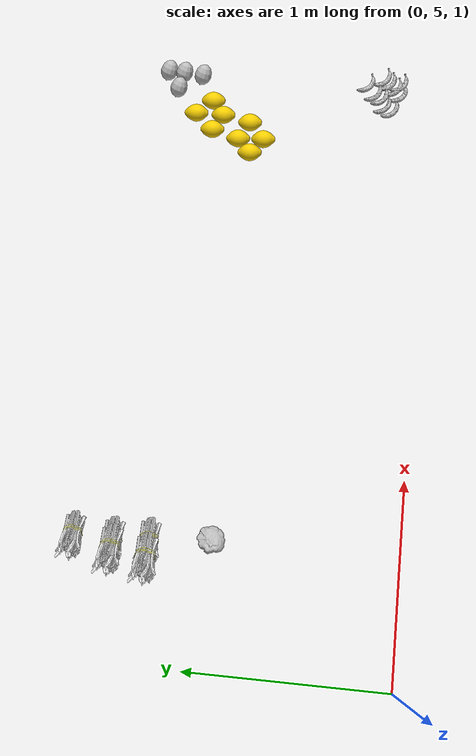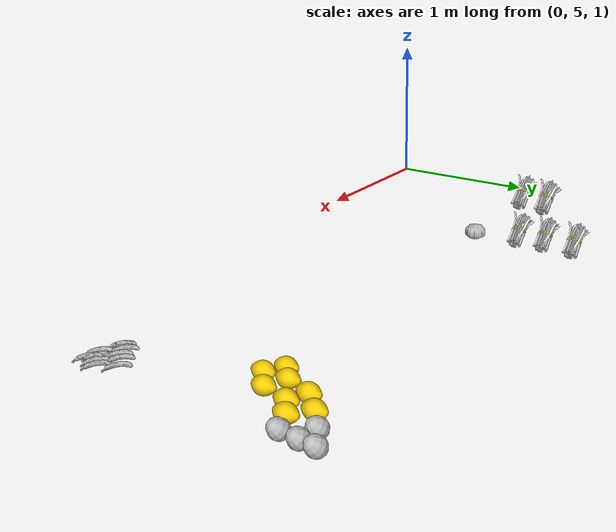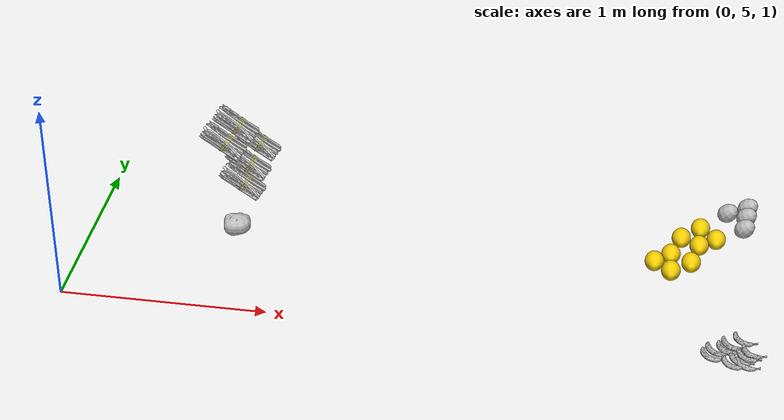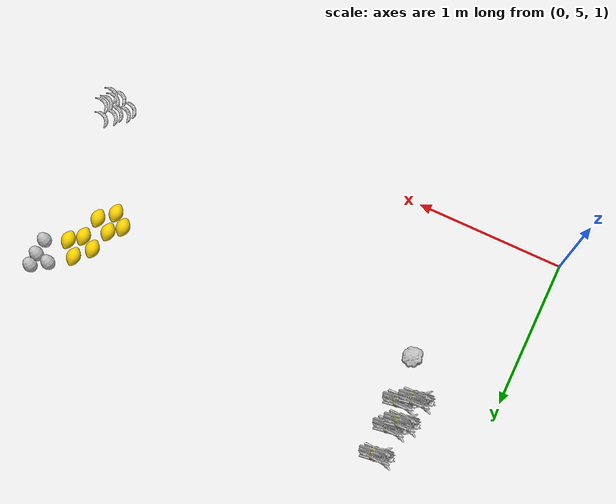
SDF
<sdf version="1.6">
 <world name="default">
  <model name="banana_clone_12">
   <link name="link_0">
    <inertial>
     <mass>1</mass>
     <inertia>
      <ixx>0.166667</ixx>
      <ixy>0</ixy>
      <ixz>0</ixz>
      <iyy>0.166667</iyy>
      <iyz>0</iyz>
      <izz>0.166667</izz>
     </inertia>
    </inertial>
    <visual name="visual">
     <geometry><mesh><uri>model://banana/meshes/banana.dae</uri><scale>1 1 1</scale></mesh></geometry>
    </visual>
    <collision name="collision">
     <geometry><mesh><uri>model://banana/meshes/banana.dae</uri><scale>1 1 1</scale></mesh></geometry>
     <surface>
      <friction>
       <ode><mu>1</mu><mu2>1</mu2><fdir1>0 0 0</fdir1><slip1>0</slip1><slip2>0</slip2></ode>
       <torsional>
        <coefficient>1</coefficient>
        <patch_radius>0</patch_radius>
        <surface_radius>0</surface_radius>
        <use_patch_radius>1</use_patch_radius>
        <ode><slip>0</slip></ode>
       </torsional>
      </friction>
      <bounce><restitution_coefficient>0</restitution_coefficient><threshold>1e+06</threshold></bounce>
      <contact>
       <collide_without_contact>0</collide_without_contact>
       <collide_without_contact_bitmask>1</collide_without_contact_bitmask>
       <collide_bitmask>1</collide_bitmask>
       <ode>
        <soft_cfm>0</soft_cfm>
        <soft_erp>0.2</soft_erp>
        <kp>1e+13</kp>
        <kd>1</kd>
        <max_vel>0.01</max_vel>
        <min_depth>0</min_depth>
       </ode>
       <bullet>
        <split_impulse>1</split_impulse>
        <split_impulse_penetration_threshold>-0.01</split_impulse_penetration_threshold>
        <soft_cfm>0</soft_cfm>
        <soft_erp>0.2</soft_erp>
        <kp>1e+13</kp>
        <kd>1</kd>
       </bullet>
      </contact>
     </surface>
    </collision>
   </link>
   <static>1</static>
   <pose>3.20722 5.31088 0.868134 0 -0 0</pose>
  </model>
  <model name="banana_clone_14">
   <link name="link_0">
    <inertial>
     <mass>1</mass>
     <inertia>
      <ixx>0.166667</ixx>
      <ixy>0</ixy>
      <ixz>0</ixz>
      <iyy>0.166667</iyy>
      <iyz>0</iyz>
      <izz>0.166667</izz>
     </inertia>
    </inertial>
    <visual name="visual">
     <geometry><mesh><uri>model://banana/meshes/banana.dae</uri><scale>1 1 1</scale></mesh></geometry>
    </visual>
    <collision name="collision">
     <geometry><mesh><uri>model://banana/meshes/banana.dae</uri><scale>1 1 1</scale></mesh></geometry>
     <surface>
      <friction>
       <ode><mu>1</mu><mu2>1</mu2><fdir1>0 0 0</fdir1><slip1>0</slip1><slip2>0</slip2></ode>
       <torsional>
        <coefficient>1</coefficient>
        <patch_radius>0</patch_radius>
        <surface_radius>0</surface_radius>
        <use_patch_radius>1</use_patch_radius>
        <ode><slip>0</slip></ode>
       </torsional>
      </friction>
      <bounce><restitution_coefficient>0</restitution_coefficient><threshold>1e+06</threshold></bounce>
      <contact>
       <collide_without_contact>0</collide_without_contact>
       <collide_without_contact_bitmask>1</collide_without_contact_bitmask>
       <collide_bitmask>1</collide_bitmask>
       <ode>
        <soft_cfm>0</soft_cfm>
        <soft_erp>0.2</soft_erp>
        <kp>1e+13</kp>
        <kd>1</kd>
        <max_vel>0.01</max_vel>
        <min_depth>0</min_depth>
       </ode>
       <bullet>
        <split_impulse>1</split_impulse>
        <split_impulse_penetration_threshold>-0.01</split_impulse_penetration_threshold>
        <soft_cfm>0</soft_cfm>
        <soft_erp>0.2</soft_erp>
        <kp>1e+13</kp>
        <kd>1</kd>
       </bullet>
      </contact>
     </surface>
    </collision>
   </link>
   <static>1</static>
   <pose>3.15384 5.26782 0.868134 0 -0 0</pose>
  </model>
  <model name="banana_clone_15">
   <link name="link_0">
    <inertial>
     <mass>1</mass>
     <inertia>
      <ixx>0.166667</ixx>
      <ixy>0</ixy>
      <ixz>0</ixz>
      <iyy>0.166667</iyy>
      <iyz>0</iyz>
      <izz>0.166667</izz>
     </inertia>
    </inertial>
    <visual name="visual">
     <geometry><mesh><uri>model://banana/meshes/banana.dae</uri><scale>1 1 1</scale></mesh></geometry>
    </visual>
    <collision name="collision">
     <geometry><mesh><uri>model://banana/meshes/banana.dae</uri><scale>1 1 1</scale></mesh></geometry>
     <surface>
      <friction>
       <ode><mu>1</mu><mu2>1</mu2><fdir1>0 0 0</fdir1><slip1>0</slip1><slip2>0</slip2></ode>
       <torsional>
        <coefficient>1</coefficient>
        <patch_radius>0</patch_radius>
        <surface_radius>0</surface_radius>
        <use_patch_radius>1</use_patch_radius>
        <ode><slip>0</slip></ode>
       </torsional>
      </friction>
      <bounce><restitution_coefficient>0</restitution_coefficient><threshold>1e+06</threshold></bounce>
      <contact>
       <collide_without_contact>0</collide_without_contact>
       <collide_without_contact_bitmask>1</collide_without_contact_bitmask>
       <collide_bitmask>1</collide_bitmask>
       <ode>
        <soft_cfm>0</soft_cfm>
        <soft_erp>0.2</soft_erp>
        <kp>1e+13</kp>
        <kd>1</kd>
        <max_vel>0.01</max_vel>
        <min_depth>0</min_depth>
       </ode>
       <bullet>
        <split_impulse>1</split_impulse>
        <split_impulse_penetration_threshold>-0.01</split_impulse_penetration_threshold>
        <soft_cfm>0</soft_cfm>
        <soft_erp>0.2</soft_erp>
        <kp>1e+13</kp>
        <kd>1</kd>
       </bullet>
      </contact>
     </surface>
    </collision>
   </link>
   <static>1</static>
   <pose>3.13296 5.22975 0.868134 0 -0 0</pose>
  </model>
  <model name="banana_clone_16">
   <link name="link_0">
    <inertial>
     <mass>1</mass>
     <inertia>
      <ixx>0.166667</ixx>
      <ixy>0</ixy>
      <ixz>0</ixz>
      <iyy>0.166667</iyy>
      <iyz>0</iyz>
      <izz>0.166667</izz>
     </inertia>
    </inertial>
    <visual name="visual">
     <geometry><mesh><uri>model://banana/meshes/banana.dae</uri><scale>1 1 1</scale></mesh></geometry>
    </visual>
    <collision name="collision">
     <geometry><mesh><uri>model://banana/meshes/banana.dae</uri><scale>1 1 1</scale></mesh></geometry>
     <surface>
      <friction>
       <ode><mu>1</mu><mu2>1</mu2><fdir1>0 0 0</fdir1><slip1>0</slip1><slip2>0</slip2></ode>
       <torsional>
        <coefficient>1</coefficient>
        <patch_radius>0</patch_radius>
        <surface_radius>0</surface_radius>
        <use_patch_radius>1</use_patch_radius>
        <ode><slip>0</slip></ode>
       </torsional>
      </friction>
      <bounce><restitution_coefficient>0</restitution_coefficient><threshold>1e+06</threshold></bounce>
      <contact>
       <collide_without_contact>0</collide_without_contact>
       <collide_without_contact_bitmask>1</collide_without_contact_bitmask>
       <collide_bitmask>1</collide_bitmask>
       <ode>
        <soft_cfm>0</soft_cfm>
        <soft_erp>0.2</soft_erp>
        <kp>1e+13</kp>
        <kd>1</kd>
        <max_vel>0.01</max_vel>
        <min_depth>0</min_depth>
       </ode>
       <bullet>
        <split_impulse>1</split_impulse>
        <split_impulse_penetration_threshold>-0.01</split_impulse_penetration_threshold>
        <soft_cfm>0</soft_cfm>
        <soft_erp>0.2</soft_erp>
        <kp>1e+13</kp>
        <kd>1</kd>
       </bullet>
      </contact>
     </surface>
    </collision>
   </link>
   <static>1</static>
   <pose>3.08263 5.21174 0.868134 0 -0 0</pose>
  </model>
  <model name="banana_clone_17">
   <link name="link_0">
    <inertial>
     <mass>1</mass>
     <inertia>
      <ixx>0.166667</ixx>
      <ixy>0</ixy>
      <ixz>0</ixz>
      <iyy>0.166667</iyy>
      <iyz>0</iyz>
      <izz>0.166667</izz>
     </inertia>
    </inertial>
    <visual name="visual">
     <geometry><mesh><uri>model://banana/meshes/banana.dae</uri><scale>1 1 1</scale></mesh></geometry>
    </visual>
    <collision name="collision">
     <geometry><mesh><uri>model://banana/meshes/banana.dae</uri><scale>1 1 1</scale></mesh></geometry>
     <surface>
      <friction>
       <ode><mu>1</mu><mu2>1</mu2><fdir1>0 0 0</fdir1><slip1>0</slip1><slip2>0</slip2></ode>
       <torsional>
        <coefficient>1</coefficient>
        <patch_radius>0</patch_radius>
        <surface_radius>0</surface_radius>
        <use_patch_radius>1</use_patch_radius>
        <ode><slip>0</slip></ode>
       </torsional>
      </friction>
      <bounce><restitution_coefficient>0</restitution_coefficient><threshold>1e+06</threshold></bounce>
      <contact>
       <collide_without_contact>0</collide_without_contact>
       <collide_without_contact_bitmask>1</collide_without_contact_bitmask>
       <collide_bitmask>1</collide_bitmask>
       <ode>
        <soft_cfm>0</soft_cfm>
        <soft_erp>0.2</soft_erp>
        <kp>1e+13</kp>
        <kd>1</kd>
        <max_vel>0.01</max_vel>
        <min_depth>0</min_depth>
       </ode>
       <bullet>
        <split_impulse>1</split_impulse>
        <split_impulse_penetration_threshold>-0.01</split_impulse_penetration_threshold>
        <soft_cfm>0</soft_cfm>
        <soft_erp>0.2</soft_erp>
        <kp>1e+13</kp>
        <kd>1</kd>
       </bullet>
      </contact>
     </surface>
    </collision>
   </link>
   <static>1</static>
   <pose>3.06204 5.16814 0.868134 0 -0 0</pose>
  </model>
  <model name="banana_clone_18">
   <link name="link_0">
    <inertial>
     <mass>1</mass>
     <inertia>
      <ixx>0.166667</ixx>
      <ixy>0</ixy>
      <ixz>0</ixz>
      <iyy>0.166667</iyy>
      <iyz>0</iyz>
      <izz>0.166667</izz>
     </inertia>
    </inertial>
    <visual name="visual">
     <geometry><mesh><uri>model://banana/meshes/banana.dae</uri><scale>1 1 1</scale></mesh></geometry>
    </visual>
    <collision name="collision">
     <geometry><mesh><uri>model://banana/meshes/banana.dae</uri><scale>1 1 1</scale></mesh></geometry>
     <surface>
      <friction>
       <ode><mu>1</mu><mu2>1</mu2><fdir1>0 0 0</fdir1><slip1>0</slip1><slip2>0</slip2></ode>
       <torsional>
        <coefficient>1</coefficient>
        <patch_radius>0</patch_radius>
        <surface_radius>0</surface_radius>
        <use_patch_radius>1</use_patch_radius>
        <ode><slip>0</slip></ode>
       </torsional>
      </friction>
      <bounce><restitution_coefficient>0</restitution_coefficient><threshold>1e+06</threshold></bounce>
      <contact>
       <collide_without_contact>0</collide_without_contact>
       <collide_without_contact_bitmask>1</collide_without_contact_bitmask>
       <collide_bitmask>1</collide_bitmask>
       <ode>
        <soft_cfm>0</soft_cfm>
        <soft_erp>0.2</soft_erp>
        <kp>1e+13</kp>
        <kd>1</kd>
        <max_vel>0.01</max_vel>
        <min_depth>0</min_depth>
       </ode>
       <bullet>
        <split_impulse>1</split_impulse>
        <split_impulse_penetration_threshold>-0.01</split_impulse_penetration_threshold>
        <soft_cfm>0</soft_cfm>
        <soft_erp>0.2</soft_erp>
        <kp>1e+13</kp>
        <kd>1</kd>
       </bullet>
      </contact>
     </surface>
    </collision>
   </link>
   <static>1</static>
   <pose>3.22499 5.12557 0.868134 0 -0 0</pose>
  </model>
  <model name="banana_clone_23">
   <link name="link_0">
    <inertial>
     <mass>1</mass>
     <inertia>
      <ixx>0.166667</ixx>
      <ixy>0</ixy>
      <ixz>0</ixz>
      <iyy>0.166667</iyy>
      <iyz>0</iyz>
      <izz>0.166667</izz>
     </inertia>
    </inertial>
    <visual name="visual">
     <geometry><mesh><uri>model://banana/meshes/banana.dae</uri><scale>1 1 1</scale></mesh></geometry>
    </visual>
    <collision name="collision">
     <geometry><mesh><uri>model://banana/meshes/banana.dae</uri><scale>1 1 1</scale></mesh></geometry>
     <surface>
      <friction>
       <ode><mu>1</mu><mu2>1</mu2><fdir1>0 0 0</fdir1><slip1>0</slip1><slip2>0</slip2></ode>
       <torsional>
        <coefficient>1</coefficient>
        <patch_radius>0</patch_radius>
        <surface_radius>0</surface_radius>
        <use_patch_radius>1</use_patch_radius>
        <ode><slip>0</slip></ode>
       </torsional>
      </friction>
      <bounce><restitution_coefficient>0</restitution_coefficient><threshold>1e+06</threshold></bounce>
      <contact>
       <collide_without_contact>0</collide_without_contact>
       <collide_without_contact_bitmask>1</collide_without_contact_bitmask>
       <collide_bitmask>1</collide_bitmask>
       <ode>
        <soft_cfm>0</soft_cfm>
        <soft_erp>0.2</soft_erp>
        <kp>1e+13</kp>
        <kd>1</kd>
        <max_vel>0.01</max_vel>
        <min_depth>0</min_depth>
       </ode>
       <bullet>
        <split_impulse>1</split_impulse>
        <split_impulse_penetration_threshold>-0.01</split_impulse_penetration_threshold>
        <soft_cfm>0</soft_cfm>
        <soft_erp>0.2</soft_erp>
        <kp>1e+13</kp>
        <kd>1</kd>
       </bullet>
      </contact>
     </surface>
    </collision>
   </link>
   <static>1</static>
   <pose>3.1606 5.12515 0.868134 0 -0 0</pose>
  </model>
  <model name="banana_clone_24">
   <link name="link_0">
    <inertial>
     <mass>1</mass>
     <inertia>
      <ixx>0.166667</ixx>
      <ixy>0</ixy>
      <ixz>0</ixz>
      <iyy>0.166667</iyy>
      <iyz>0</iyz>
      <izz>0.166667</izz>
     </inertia>
    </inertial>
    <visual name="visual">
     <geometry><mesh><uri>model://banana/meshes/banana.dae</uri><scale>1 1 1</scale></mesh></geometry>
    </visual>
    <collision name="collision">
     <geometry><mesh><uri>model://banana/meshes/banana.dae</uri><scale>1 1 1</scale></mesh></geometry>
     <surface>
      <friction>
       <ode><mu>1</mu><mu2>1</mu2><fdir1>0 0 0</fdir1><slip1>0</slip1><slip2>0</slip2></ode>
       <torsional>
        <coefficient>1</coefficient>
        <patch_radius>0</patch_radius>
        <surface_radius>0</surface_radius>
        <use_patch_radius>1</use_patch_radius>
        <ode><slip>0</slip></ode>
       </torsional>
      </friction>
      <bounce><restitution_coefficient>0</restitution_coefficient><threshold>1e+06</threshold></bounce>
      <contact>
       <collide_without_contact>0</collide_without_contact>
       <collide_without_contact_bitmask>1</collide_without_contact_bitmask>
       <collide_bitmask>1</collide_bitmask>
       <ode>
        <soft_cfm>0</soft_cfm>
        <soft_erp>0.2</soft_erp>
        <kp>1e+13</kp>
        <kd>1</kd>
        <max_vel>0.01</max_vel>
        <min_depth>0</min_depth>
       </ode>
       <bullet>
        <split_impulse>1</split_impulse>
        <split_impulse_penetration_threshold>-0.01</split_impulse_penetration_threshold>
        <soft_cfm>0</soft_cfm>
        <soft_erp>0.2</soft_erp>
        <kp>1e+13</kp>
        <kd>1</kd>
       </bullet>
      </contact>
     </surface>
    </collision>
   </link>
   <static>1</static>
   <pose>3.19606 5.15544 0.868134 0 -0 0</pose>
  </model>
  <model name="banana_clone_25">
   <link name="link_0">
    <inertial>
     <mass>1</mass>
     <inertia>
      <ixx>0.166667</ixx>
      <ixy>0</ixy>
      <ixz>0</ixz>
      <iyy>0.166667</iyy>
      <iyz>0</iyz>
      <izz>0.166667</izz>
     </inertia>
    </inertial>
    <visual name="visual">
     <geometry><mesh><uri>model://banana/meshes/banana.dae</uri><scale>1 1 1</scale></mesh></geometry>
    </visual>
    <collision name="collision">
     <geometry><mesh><uri>model://banana/meshes/banana.dae</uri><scale>1 1 1</scale></mesh></geometry>
     <surface>
      <friction>
       <ode><mu>1</mu><mu2>1</mu2><fdir1>0 0 0</fdir1><slip1>0</slip1><slip2>0</slip2></ode>
       <torsional>
        <coefficient>1</coefficient>
        <patch_radius>0</patch_radius>
        <surface_radius>0</surface_radius>
        <use_patch_radius>1</use_patch_radius>
        <ode><slip>0</slip></ode>
       </torsional>
      </friction>
      <bounce><restitution_coefficient>0</restitution_coefficient><threshold>1e+06</threshold></bounce>
      <contact>
       <collide_without_contact>0</collide_without_contact>
       <collide_without_contact_bitmask>1</collide_without_contact_bitmask>
       <collide_bitmask>1</collide_bitmask>
       <ode>
        <soft_cfm>0</soft_cfm>
        <soft_erp>0.2</soft_erp>
        <kp>1e+13</kp>
        <kd>1</kd>
        <max_vel>0.01</max_vel>
        <min_depth>0</min_depth>
       </ode>
       <bullet>
        <split_impulse>1</split_impulse>
        <split_impulse_penetration_threshold>-0.01</split_impulse_penetration_threshold>
        <soft_cfm>0</soft_cfm>
        <soft_erp>0.2</soft_erp>
        <kp>1e+13</kp>
        <kd>1</kd>
       </bullet>
      </contact>
     </surface>
    </collision>
   </link>
   <static>1</static>
   <pose>3.22813 5.19032 0.868134 0 -0 0</pose>
  </model>
  <model name="banana_clone_26">
   <link name="link_0">
    <inertial>
     <mass>1</mass>
     <inertia>
      <ixx>0.166667</ixx>
      <ixy>0</ixy>
      <ixz>0</ixz>
      <iyy>0.166667</iyy>
      <iyz>0</iyz>
      <izz>0.166667</izz>
     </inertia>
    </inertial>
    <visual name="visual">
     <geometry><mesh><uri>model://banana/meshes/banana.dae</uri><scale>1 1 1</scale></mesh></geometry>
    </visual>
    <collision name="collision">
     <geometry><mesh><uri>model://banana/meshes/banana.dae</uri><scale>1 1 1</scale></mesh></geometry>
     <surface>
      <friction>
       <ode><mu>1</mu><mu2>1</mu2><fdir1>0 0 0</fdir1><slip1>0</slip1><slip2>0</slip2></ode>
       <torsional>
        <coefficient>1</coefficient>
        <patch_radius>0</patch_radius>
        <surface_radius>0</surface_radius>
        <use_patch_radius>1</use_patch_radius>
        <ode><slip>0</slip></ode>
       </torsional>
      </friction>
      <bounce><restitution_coefficient>0</restitution_coefficient><threshold>1e+06</threshold></bounce>
      <contact>
       <collide_without_contact>0</collide_without_contact>
       <collide_without_contact_bitmask>1</collide_without_contact_bitmask>
       <collide_bitmask>1</collide_bitmask>
       <ode>
        <soft_cfm>0</soft_cfm>
        <soft_erp>0.2</soft_erp>
        <kp>1e+13</kp>
        <kd>1</kd>
        <max_vel>0.01</max_vel>
        <min_depth>0</min_depth>
       </ode>
       <bullet>
        <split_impulse>1</split_impulse>
        <split_impulse_penetration_threshold>-0.01</split_impulse_penetration_threshold>
        <soft_cfm>0</soft_cfm>
        <soft_erp>0.2</soft_erp>
        <kp>1e+13</kp>
        <kd>1</kd>
       </bullet>
      </contact>
     </surface>
    </collision>
   </link>
   <static>1</static>
   <pose>3.25047 5.22007 0.868134 0 -0 0</pose>
  </model>
  <model name="lime_clone_7">
   <link name="link_0">
    <inertial>
     <mass>1</mass>
     <inertia>
      <ixx>0.166667</ixx>
      <ixy>0</ixy>
      <ixz>0</ixz>
      <iyy>0.166667</iyy>
      <iyz>0</iyz>
      <izz>0.166667</izz>
     </inertia>
    </inertial>
    <visual name="visual">
     <geometry><mesh><uri>model://lime/meshes/lime.dae</uri><scale>1 1 1</scale></mesh></geometry>
    </visual>
    <collision name="collision">
     <geometry><mesh><uri>model://lime/meshes/lime.dae</uri><scale>1 1 1</scale></mesh></geometry>
     <surface>
      <friction>
       <ode><mu>1</mu><mu2>1</mu2><fdir1>0 0 0</fdir1><slip1>0</slip1><slip2>0</slip2></ode>
       <torsional>
        <coefficient>1</coefficient>
        <patch_radius>0</patch_radius>
        <surface_radius>0</surface_radius>
        <use_patch_radius>1</use_patch_radius>
        <ode><slip>0</slip></ode>
       </torsional>
      </friction>
      <bounce><restitution_coefficient>0</restitution_coefficient><threshold>1e+06</threshold></bounce>
      <contact>
       <collide_without_contact>0</collide_without_contact>
       <collide_without_contact_bitmask>1</collide_without_contact_bitmask>
       <collide_bitmask>1</collide_bitmask>
       <ode>
        <soft_cfm>0</soft_cfm>
        <soft_erp>0.2</soft_erp>
        <kp>1e+13</kp>
        <kd>1</kd>
        <max_vel>0.01</max_vel>
        <min_depth>0</min_depth>
       </ode>
       <bullet>
        <split_impulse>1</split_impulse>
        <split_impulse_penetration_threshold>-0.01</split_impulse_penetration_threshold>
        <soft_cfm>0</soft_cfm>
        <soft_erp>0.2</soft_erp>
        <kp>1e+13</kp>
        <kd>1</kd>
       </bullet>
      </contact>
     </surface>
    </collision>
   </link>
   <static>1</static>
   <pose>3.17719 6.32028 0.896084 0 -0 0</pose>
  </model>
  <model name="lime_clone_8">
   <link name="link_0">
    <inertial>
     <mass>1</mass>
     <inertia>
      <ixx>0.166667</ixx>
      <ixy>0</ixy>
      <ixz>0</ixz>
      <iyy>0.166667</iyy>
      <iyz>0</iyz>
      <izz>0.166667</izz>
     </inertia>
    </inertial>
    <visual name="visual">
     <geometry><mesh><uri>model://lime/meshes/lime.dae</uri><scale>1 1 1</scale></mesh></geometry>
    </visual>
    <collision name="collision">
     <geometry><mesh><uri>model://lime/meshes/lime.dae</uri><scale>1 1 1</scale></mesh></geometry>
     <surface>
      <friction>
       <ode><mu>1</mu><mu2>1</mu2><fdir1>0 0 0</fdir1><slip1>0</slip1><slip2>0</slip2></ode>
       <torsional>
        <coefficient>1</coefficient>
        <patch_radius>0</patch_radius>
        <surface_radius>0</surface_radius>
        <use_patch_radius>1</use_patch_radius>
        <ode><slip>0</slip></ode>
       </torsional>
      </friction>
      <bounce><restitution_coefficient>0</restitution_coefficient><threshold>1e+06</threshold></bounce>
      <contact>
       <collide_without_contact>0</collide_without_contact>
       <collide_without_contact_bitmask>1</collide_without_contact_bitmask>
       <collide_bitmask>1</collide_bitmask>
       <ode>
        <soft_cfm>0</soft_cfm>
        <soft_erp>0.2</soft_erp>
        <kp>1e+13</kp>
        <kd>1</kd>
        <max_vel>0.01</max_vel>
        <min_depth>0</min_depth>
       </ode>
       <bullet>
        <split_impulse>1</split_impulse>
        <split_impulse_penetration_threshold>-0.01</split_impulse_penetration_threshold>
        <soft_cfm>0</soft_cfm>
        <soft_erp>0.2</soft_erp>
        <kp>1e+13</kp>
        <kd>1</kd>
       </bullet>
      </contact>
     </surface>
    </collision>
   </link>
   <static>1</static>
   <pose>3.18022 6.40688 0.896084 0 -0 0</pose>
  </model>
  <model name="lime_clone_9">
   <link name="link_0">
    <inertial>
     <mass>1</mass>
     <inertia>
      <ixx>0.166667</ixx>
      <ixy>0</ixy>
      <ixz>0</ixz>
      <iyy>0.166667</iyy>
      <iyz>0</iyz>
      <izz>0.166667</izz>
     </inertia>
    </inertial>
    <visual name="visual">
     <geometry><mesh><uri>model://lime/meshes/lime.dae</uri><scale>1 1 1</scale></mesh></geometry>
    </visual>
    <collision name="collision">
     <geometry><mesh><uri>model://lime/meshes/lime.dae</uri><scale>1 1 1</scale></mesh></geometry>
     <surface>
      <friction>
       <ode><mu>1</mu><mu2>1</mu2><fdir1>0 0 0</fdir1><slip1>0</slip1><slip2>0</slip2></ode>
       <torsional>
        <coefficient>1</coefficient>
        <patch_radius>0</patch_radius>
        <surface_radius>0</surface_radius>
        <use_patch_radius>1</use_patch_radius>
        <ode><slip>0</slip></ode>
       </torsional>
      </friction>
      <bounce><restitution_coefficient>0</restitution_coefficient><threshold>1e+06</threshold></bounce>
      <contact>
       <collide_without_contact>0</collide_without_contact>
       <collide_without_contact_bitmask>1</collide_without_contact_bitmask>
       <collide_bitmask>1</collide_bitmask>
       <ode>
        <soft_cfm>0</soft_cfm>
        <soft_erp>0.2</soft_erp>
        <kp>1e+13</kp>
        <kd>1</kd>
        <max_vel>0.01</max_vel>
        <min_depth>0</min_depth>
       </ode>
       <bullet>
        <split_impulse>1</split_impulse>
        <split_impulse_penetration_threshold>-0.01</split_impulse_penetration_threshold>
        <soft_cfm>0</soft_cfm>
        <soft_erp>0.2</soft_erp>
        <kp>1e+13</kp>
        <kd>1</kd>
       </bullet>
      </contact>
     </surface>
    </collision>
   </link>
   <static>1</static>
   <pose>3.17129 6.21427 0.896084 0 -0 0</pose>
  </model>
  <model name="lime_clone_10">
   <link name="link_0">
    <inertial>
     <mass>1</mass>
     <inertia>
      <ixx>0.166667</ixx>
      <ixy>0</ixy>
      <ixz>0</ixz>
      <iyy>0.166667</iyy>
      <iyz>0</iyz>
      <izz>0.166667</izz>
     </inertia>
    </inertial>
    <visual name="visual">
     <geometry><mesh><uri>model://lime/meshes/lime.dae</uri><scale>1 1 1</scale></mesh></geometry>
    </visual>
    <collision name="collision">
     <geometry><mesh><uri>model://lime/meshes/lime.dae</uri><scale>1 1 1</scale></mesh></geometry>
     <surface>
      <friction>
       <ode><mu>1</mu><mu2>1</mu2><fdir1>0 0 0</fdir1><slip1>0</slip1><slip2>0</slip2></ode>
       <torsional>
        <coefficient>1</coefficient>
        <patch_radius>0</patch_radius>
        <surface_radius>0</surface_radius>
        <use_patch_radius>1</use_patch_radius>
        <ode><slip>0</slip></ode>
       </torsional>
      </friction>
      <bounce><restitution_coefficient>0</restitution_coefficient><threshold>1e+06</threshold></bounce>
      <contact>
       <collide_without_contact>0</collide_without_contact>
       <collide_without_contact_bitmask>1</collide_without_contact_bitmask>
       <collide_bitmask>1</collide_bitmask>
       <ode>
        <soft_cfm>0</soft_cfm>
        <soft_erp>0.2</soft_erp>
        <kp>1e+13</kp>
        <kd>1</kd>
        <max_vel>0.01</max_vel>
        <min_depth>0</min_depth>
       </ode>
       <bullet>
        <split_impulse>1</split_impulse>
        <split_impulse_penetration_threshold>-0.01</split_impulse_penetration_threshold>
        <soft_cfm>0</soft_cfm>
        <soft_erp>0.2</soft_erp>
        <kp>1e+13</kp>
        <kd>1</kd>
       </bullet>
      </contact>
     </surface>
    </collision>
   </link>
   <static>1</static>
   <pose>3.08065 6.34166 0.896084 0 -0 0</pose>
  </model>
  <model name="lemon">
   <link name="link_0">
    <inertial>
     <mass>1</mass>
     <inertia>
      <ixx>0.166667</ixx>
      <ixy>0</ixy>
      <ixz>0</ixz>
      <iyy>0.166667</iyy>
      <iyz>0</iyz>
      <izz>0.166667</izz>
     </inertia>
    </inertial>
    <visual name="visual">
     <geometry><mesh><uri>model://lemon/meshes/lemon.dae</uri><scale>0.2 0.2 0.2</scale></mesh></geometry>
    </visual>
    <collision name="collision">
     <geometry><mesh><uri>model://lemon/meshes/lemon.dae</uri><scale>0.2 0.2 0.2</scale></mesh></geometry>
     <surface>
      <friction>
       <ode><mu>1</mu><mu2>1</mu2><fdir1>0 0 0</fdir1><slip1>0</slip1><slip2>0</slip2></ode>
       <torsional>
        <coefficient>1</coefficient>
        <patch_radius>0</patch_radius>
        <surface_radius>0</surface_radius>
        <use_patch_radius>1</use_patch_radius>
        <ode><slip>0</slip></ode>
       </torsional>
      </friction>
      <bounce><restitution_coefficient>0</restitution_coefficient><threshold>1e+06</threshold></bounce>
      <contact>
       <collide_without_contact>0</collide_without_contact>
       <collide_without_contact_bitmask>1</collide_without_contact_bitmask>
       <collide_bitmask>1</collide_bitmask>
       <ode>
        <soft_cfm>0</soft_cfm>
        <soft_erp>0.2</soft_erp>
        <kp>1e+13</kp>
        <kd>1</kd>
        <max_vel>0.01</max_vel>
        <min_depth>0</min_depth>
       </ode>
       <bullet>
        <split_impulse>1</split_impulse>
        <split_impulse_penetration_threshold>-0.01</split_impulse_penetration_threshold>
        <soft_cfm>0</soft_cfm>
        <soft_erp>0.2</soft_erp>
        <kp>1e+13</kp>
        <kd>1</kd>
       </bullet>
      </contact>
     </surface>
    </collision>
   </link>
   <static>1</static>
   <pose>3.04604 6.24248 0.834655 0 -0 0</pose>
  </model>
  <model name="lemon_clone">
   <link name="link_0">
    <inertial>
     <mass>1</mass>
     <inertia>
      <ixx>0.166667</ixx>
      <ixy>0</ixy>
      <ixz>0</ixz>
      <iyy>0.166667</iyy>
      <iyz>0</iyz>
      <izz>0.166667</izz>
     </inertia>
    </inertial>
    <visual name="visual">
     <geometry><mesh><uri>model://lemon/meshes/lemon.dae</uri><scale>0.2 0.2 0.2</scale></mesh></geometry>
    </visual>
    <collision name="collision">
     <geometry><mesh><uri>model://lemon/meshes/lemon.dae</uri><scale>0.2 0.2 0.2</scale></mesh></geometry>
     <surface>
      <friction>
       <ode><mu>1</mu><mu2>1</mu2><fdir1>0 0 0</fdir1><slip1>0</slip1><slip2>0</slip2></ode>
       <torsional>
        <coefficient>1</coefficient>
        <patch_radius>0</patch_radius>
        <surface_radius>0</surface_radius>
        <use_patch_radius>1</use_patch_radius>
        <ode><slip>0</slip></ode>
       </torsional>
      </friction>
      <bounce><restitution_coefficient>0</restitution_coefficient><threshold>1e+06</threshold></bounce>
      <contact>
       <collide_without_contact>0</collide_without_contact>
       <collide_without_contact_bitmask>1</collide_without_contact_bitmask>
       <collide_bitmask>1</collide_bitmask>
       <ode>
        <soft_cfm>0</soft_cfm>
        <soft_erp>0.2</soft_erp>
        <kp>1e+13</kp>
        <kd>1</kd>
        <max_vel>0.01</max_vel>
        <min_depth>0</min_depth>
       </ode>
       <bullet>
        <split_impulse>1</split_impulse>
        <split_impulse_penetration_threshold>-0.01</split_impulse_penetration_threshold>
        <soft_cfm>0</soft_cfm>
        <soft_erp>0.2</soft_erp>
        <kp>1e+13</kp>
        <kd>1</kd>
       </bullet>
      </contact>
     </surface>
    </collision>
   </link>
   <static>1</static>
   <pose>2.96402 6.17826 0.834655 0 -0 0</pose>
  </model>
  <model name="lemon_clone_0">
   <link name="link_0">
    <inertial>
     <mass>1</mass>
     <inertia>
      <ixx>0.166667</ixx>
      <ixy>0</ixy>
      <ixz>0</ixz>
      <iyy>0.166667</iyy>
      <iyz>0</iyz>
      <izz>0.166667</izz>
     </inertia>
    </inertial>
    <visual name="visual">
     <geometry><mesh><uri>model://lemon/meshes/lemon.dae</uri><scale>0.2 0.2 0.2</scale></mesh></geometry>
    </visual>
    <collision name="collision">
     <geometry><mesh><uri>model://lemon/meshes/lemon.dae</uri><scale>0.2 0.2 0.2</scale></mesh></geometry>
     <surface>
      <friction>
       <ode><mu>1</mu><mu2>1</mu2><fdir1>0 0 0</fdir1><slip1>0</slip1><slip2>0</slip2></ode>
       <torsional>
        <coefficient>1</coefficient>
        <patch_radius>0</patch_radius>
        <surface_radius>0</surface_radius>
        <use_patch_radius>1</use_patch_radius>
        <ode><slip>0</slip></ode>
       </torsional>
      </friction>
      <bounce><restitution_coefficient>0</restitution_coefficient><threshold>1e+06</threshold></bounce>
      <contact>
       <collide_without_contact>0</collide_without_contact>
       <collide_without_contact_bitmask>1</collide_without_contact_bitmask>
       <collide_bitmask>1</collide_bitmask>
       <ode>
        <soft_cfm>0</soft_cfm>
        <soft_erp>0.2</soft_erp>
        <kp>1e+13</kp>
        <kd>1</kd>
        <max_vel>0.01</max_vel>
        <min_depth>0</min_depth>
       </ode>
       <bullet>
        <split_impulse>1</split_impulse>
        <split_impulse_penetration_threshold>-0.01</split_impulse_penetration_threshold>
        <soft_cfm>0</soft_cfm>
        <soft_erp>0.2</soft_erp>
        <kp>1e+13</kp>
        <kd>1</kd>
       </bullet>
      </contact>
     </surface>
    </collision>
   </link>
   <static>1</static>
   <pose>2.96214 6.33064 0.834655 0 -0 0</pose>
  </model>
  <model name="lemon_clone_1">
   <link name="link_0">
    <inertial>
     <mass>1</mass>
     <inertia>
      <ixx>0.166667</ixx>
      <ixy>0</ixy>
      <ixz>0</ixz>
      <iyy>0.166667</iyy>
      <iyz>0</iyz>
      <izz>0.166667</izz>
     </inertia>
    </inertial>
    <visual name="visual">
     <geometry><mesh><uri>model://lemon/meshes/lemon.dae</uri><scale>0.2 0.2 0.2</scale></mesh></geometry>
    </visual>
    <collision name="collision">
     <geometry><mesh><uri>model://lemon/meshes/lemon.dae</uri><scale>0.2 0.2 0.2</scale></mesh></geometry>
     <surface>
      <friction>
       <ode><mu>1</mu><mu2>1</mu2><fdir1>0 0 0</fdir1><slip1>0</slip1><slip2>0</slip2></ode>
       <torsional>
        <coefficient>1</coefficient>
        <patch_radius>0</patch_radius>
        <surface_radius>0</surface_radius>
        <use_patch_radius>1</use_patch_radius>
        <ode><slip>0</slip></ode>
       </torsional>
      </friction>
      <bounce><restitution_coefficient>0</restitution_coefficient><threshold>1e+06</threshold></bounce>
      <contact>
       <collide_without_contact>0</collide_without_contact>
       <collide_without_contact_bitmask>1</collide_without_contact_bitmask>
       <collide_bitmask>1</collide_bitmask>
       <ode>
        <soft_cfm>0</soft_cfm>
        <soft_erp>0.2</soft_erp>
        <kp>1e+13</kp>
        <kd>1</kd>
        <max_vel>0.01</max_vel>
        <min_depth>0</min_depth>
       </ode>
       <bullet>
        <split_impulse>1</split_impulse>
        <split_impulse_penetration_threshold>-0.01</split_impulse_penetration_threshold>
        <soft_cfm>0</soft_cfm>
        <soft_erp>0.2</soft_erp>
        <kp>1e+13</kp>
        <kd>1</kd>
       </bullet>
      </contact>
     </surface>
    </collision>
   </link>
   <static>1</static>
   <pose>2.87103 6.23112 0.834655 0 -0 0</pose>
  </model>
  <model name="lemon_clone_2">
   <link name="link_0">
    <inertial>
     <mass>1</mass>
     <inertia>
      <ixx>0.166667</ixx>
      <ixy>0</ixy>
      <ixz>0</ixz>
      <iyy>0.166667</iyy>
      <iyz>0</iyz>
      <izz>0.166667</izz>
     </inertia>
    </inertial>
    <visual name="visual">
     <geometry><mesh><uri>model://lemon/meshes/lemon.dae</uri><scale>0.2 0.2 0.2</scale></mesh></geometry>
    </visual>
    <collision name="collision">
     <geometry><mesh><uri>model://lemon/meshes/lemon.dae</uri><scale>0.2 0.2 0.2</scale></mesh></geometry>
     <surface>
      <friction>
       <ode><mu>1</mu><mu2>1</mu2><fdir1>0 0 0</fdir1><slip1>0</slip1><slip2>0</slip2></ode>
       <torsional>
        <coefficient>1</coefficient>
        <patch_radius>0</patch_radius>
        <surface_radius>0</surface_radius>
        <use_patch_radius>1</use_patch_radius>
        <ode><slip>0</slip></ode>
       </torsional>
      </friction>
      <bounce><restitution_coefficient>0</restitution_coefficient><threshold>1e+06</threshold></bounce>
      <contact>
       <collide_without_contact>0</collide_without_contact>
       <collide_without_contact_bitmask>1</collide_without_contact_bitmask>
       <collide_bitmask>1</collide_bitmask>
       <ode>
        <soft_cfm>0</soft_cfm>
        <soft_erp>0.2</soft_erp>
        <kp>1e+13</kp>
        <kd>1</kd>
        <max_vel>0.01</max_vel>
        <min_depth>0</min_depth>
       </ode>
       <bullet>
        <split_impulse>1</split_impulse>
        <split_impulse_penetration_threshold>-0.01</split_impulse_penetration_threshold>
        <soft_cfm>0</soft_cfm>
        <soft_erp>0.2</soft_erp>
        <kp>1e+13</kp>
        <kd>1</kd>
       </bullet>
      </contact>
     </surface>
    </collision>
   </link>
   <static>1</static>
   <pose>2.93254 6.02452 0.834655 0 -0 0</pose>
  </model>
  <model name="lemon_clone_3">
   <link name="link_0">
    <inertial>
     <mass>1</mass>
     <inertia>
      <ixx>0.166667</ixx>
      <ixy>0</ixy>
      <ixz>0</ixz>
      <iyy>0.166667</iyy>
      <iyz>0</iyz>
      <izz>0.166667</izz>
     </inertia>
    </inertial>
    <visual name="visual">
     <geometry><mesh><uri>model://lemon/meshes/lemon.dae</uri><scale>0.2 0.2 0.2</scale></mesh></geometry>
    </visual>
    <collision name="collision">
     <geometry><mesh><uri>model://lemon/meshes/lemon.dae</uri><scale>0.2 0.2 0.2</scale></mesh></geometry>
     <surface>
      <friction>
       <ode><mu>1</mu><mu2>1</mu2><fdir1>0 0 0</fdir1><slip1>0</slip1><slip2>0</slip2></ode>
       <torsional>
        <coefficient>1</coefficient>
        <patch_radius>0</patch_radius>
        <surface_radius>0</surface_radius>
        <use_patch_radius>1</use_patch_radius>
        <ode><slip>0</slip></ode>
       </torsional>
      </friction>
      <bounce><restitution_coefficient>0</restitution_coefficient><threshold>1e+06</threshold></bounce>
      <contact>
       <collide_without_contact>0</collide_without_contact>
       <collide_without_contact_bitmask>1</collide_without_contact_bitmask>
       <collide_bitmask>1</collide_bitmask>
       <ode>
        <soft_cfm>0</soft_cfm>
        <soft_erp>0.2</soft_erp>
        <kp>1e+13</kp>
        <kd>1</kd>
        <max_vel>0.01</max_vel>
        <min_depth>0</min_depth>
       </ode>
       <bullet>
        <split_impulse>1</split_impulse>
        <split_impulse_penetration_threshold>-0.01</split_impulse_penetration_threshold>
        <soft_cfm>0</soft_cfm>
        <soft_erp>0.2</soft_erp>
        <kp>1e+13</kp>
        <kd>1</kd>
       </bullet>
      </contact>
     </surface>
    </collision>
   </link>
   <static>1</static>
   <pose>2.82872 6.08158 0.834655 0 -0 0</pose>
  </model>
  <model name="lemon_clone_4">
   <link name="link_0">
    <inertial>
     <mass>1</mass>
     <inertia>
      <ixx>0.166667</ixx>
      <ixy>0</ixy>
      <ixz>0</ixz>
      <iyy>0.166667</iyy>
      <iyz>0</iyz>
      <izz>0.166667</izz>
     </inertia>
    </inertial>
    <visual name="visual">
     <geometry><mesh><uri>model://lemon/meshes/lemon.dae</uri><scale>0.2 0.2 0.2</scale></mesh></geometry>
    </visual>
    <collision name="collision">
     <geometry><mesh><uri>model://lemon/meshes/lemon.dae</uri><scale>0.2 0.2 0.2</scale></mesh></geometry>
     <surface>
      <friction>
       <ode><mu>1</mu><mu2>1</mu2><fdir1>0 0 0</fdir1><slip1>0</slip1><slip2>0</slip2></ode>
       <torsional>
        <coefficient>1</coefficient>
        <patch_radius>0</patch_radius>
        <surface_radius>0</surface_radius>
        <use_patch_radius>1</use_patch_radius>
        <ode><slip>0</slip></ode>
       </torsional>
      </friction>
      <bounce><restitution_coefficient>0</restitution_coefficient><threshold>1e+06</threshold></bounce>
      <contact>
       <collide_without_contact>0</collide_without_contact>
       <collide_without_contact_bitmask>1</collide_without_contact_bitmask>
       <collide_bitmask>1</collide_bitmask>
       <ode>
        <soft_cfm>0</soft_cfm>
        <soft_erp>0.2</soft_erp>
        <kp>1e+13</kp>
        <kd>1</kd>
        <max_vel>0.01</max_vel>
        <min_depth>0</min_depth>
       </ode>
       <bullet>
        <split_impulse>1</split_impulse>
        <split_impulse_penetration_threshold>-0.01</split_impulse_penetration_threshold>
        <soft_cfm>0</soft_cfm>
        <soft_erp>0.2</soft_erp>
        <kp>1e+13</kp>
        <kd>1</kd>
       </bullet>
      </contact>
     </surface>
    </collision>
   </link>
   <static>1</static>
   <pose>2.75157 6.00947 0.834655 0 -0 0</pose>
  </model>
  <model name="lemon_clone_5">
   <link name="link_0">
    <inertial>
     <mass>1</mass>
     <inertia>
      <ixx>0.166667</ixx>
      <ixy>0</ixy>
      <ixz>0</ixz>
      <iyy>0.166667</iyy>
      <iyz>0</iyz>
      <izz>0.166667</izz>
     </inertia>
    </inertial>
    <visual name="visual">
     <geometry><mesh><uri>model://lemon/meshes/lemon.dae</uri><scale>0.2 0.2 0.2</scale></mesh></geometry>
    </visual>
    <collision name="collision">
     <geometry><mesh><uri>model://lemon/meshes/lemon.dae</uri><scale>0.2 0.2 0.2</scale></mesh></geometry>
     <surface>
      <friction>
       <ode><mu>1</mu><mu2>1</mu2><fdir1>0 0 0</fdir1><slip1>0</slip1><slip2>0</slip2></ode>
       <torsional>
        <coefficient>1</coefficient>
        <patch_radius>0</patch_radius>
        <surface_radius>0</surface_radius>
        <use_patch_radius>1</use_patch_radius>
        <ode><slip>0</slip></ode>
       </torsional>
      </friction>
      <bounce><restitution_coefficient>0</restitution_coefficient><threshold>1e+06</threshold></bounce>
      <contact>
       <collide_without_contact>0</collide_without_contact>
       <collide_without_contact_bitmask>1</collide_without_contact_bitmask>
       <collide_bitmask>1</collide_bitmask>
       <ode>
        <soft_cfm>0</soft_cfm>
        <soft_erp>0.2</soft_erp>
        <kp>1e+13</kp>
        <kd>1</kd>
        <max_vel>0.01</max_vel>
        <min_depth>0</min_depth>
       </ode>
       <bullet>
        <split_impulse>1</split_impulse>
        <split_impulse_penetration_threshold>-0.01</split_impulse_penetration_threshold>
        <soft_cfm>0</soft_cfm>
        <soft_erp>0.2</soft_erp>
        <kp>1e+13</kp>
        <kd>1</kd>
       </bullet>
      </contact>
     </surface>
    </collision>
   </link>
   <static>1</static>
   <pose>2.83817 5.94113 0.834655 0 -0 0</pose>
  </model>
  <model name="coliflower_clone_clone_2_clone_3_clone_3">
   <link name="link_2">
    <inertial>
     <mass>1</mass>
     <inertia>
      <ixx>0.166667</ixx>
      <ixy>0</ixy>
      <ixz>0</ixz>
      <iyy>0.166667</iyy>
      <iyz>0</iyz>
      <izz>0.166667</izz>
     </inertia>
    </inertial>
    <visual name="visual">
     <geometry><mesh><uri>model://coliflower/meshes/coliflower.dae</uri><scale>1 1 1</scale></mesh></geometry>
    </visual>
    <collision name="collision">
     <geometry><mesh><uri>model://coliflower/meshes/coliflower.dae</uri><scale>1 1 1</scale></mesh></geometry>
     <surface>
      <friction>
       <ode><mu>1</mu><mu2>1</mu2><fdir1>0 0 0</fdir1><slip1>0</slip1><slip2>0</slip2></ode>
       <torsional>
        <coefficient>1</coefficient>
        <patch_radius>0</patch_radius>
        <surface_radius>0</surface_radius>
        <use_patch_radius>1</use_patch_radius>
        <ode><slip>0</slip></ode>
       </torsional>
      </friction>
      <bounce><restitution_coefficient>0</restitution_coefficient><threshold>1e+06</threshold></bounce>
      <contact>
       <collide_without_contact>0</collide_without_contact>
       <collide_without_contact_bitmask>1</collide_without_contact_bitmask>
       <collide_bitmask>1</collide_bitmask>
       <ode>
        <soft_cfm>0</soft_cfm>
        <soft_erp>0.2</soft_erp>
        <kp>1e+13</kp>
        <kd>1</kd>
        <max_vel>0.01</max_vel>
        <min_depth>0</min_depth>
       </ode>
       <bullet>
        <split_impulse>1</split_impulse>
        <split_impulse_penetration_threshold>-0.01</split_impulse_penetration_threshold>
        <soft_cfm>0</soft_cfm>
        <soft_erp>0.2</soft_erp>
        <kp>1e+13</kp>
        <kd>1</kd>
       </bullet>
      </contact>
     </surface>
    </collision>
   </link>
   <static>1</static>
   <pose>0.621551 5.9572 0.788103 0 -0 0</pose>
  </model>
  <model name="sparragus">
   <link name="link_1">
    <inertial>
     <mass>1</mass>
     <inertia>
      <ixx>0.166667</ixx>
      <ixy>0</ixy>
      <ixz>0</ixz>
      <iyy>0.166667</iyy>
      <iyz>0</iyz>
      <izz>0.166667</izz>
     </inertia>
    </inertial>
    <visual name="visual">
     <geometry><mesh><uri>model://asparagus/meshes/asparagus.dae</uri><scale>1 1 1</scale></mesh></geometry>
    </visual>
    <collision name="collision">
     <geometry><mesh><uri>model://asparagus/meshes/asparagus.dae</uri><scale>1 1 1</scale></mesh></geometry>
     <surface>
      <friction>
       <ode><mu>1</mu><mu2>1</mu2><fdir1>0 0 0</fdir1><slip1>0</slip1><slip2>0</slip2></ode>
       <torsional>
        <coefficient>1</coefficient>
        <patch_radius>0</patch_radius>
        <surface_radius>0</surface_radius>
        <use_patch_radius>1</use_patch_radius>
        <ode><slip>0</slip></ode>
       </torsional>
      </friction>
      <bounce><restitution_coefficient>0</restitution_coefficient><threshold>1e+06</threshold></bounce>
      <contact>
       <collide_without_contact>0</collide_without_contact>
       <collide_without_contact_bitmask>1</collide_without_contact_bitmask>
       <collide_bitmask>1</collide_bitmask>
       <ode>
        <soft_cfm>0</soft_cfm>
        <soft_erp>0.2</soft_erp>
        <kp>1e+13</kp>
        <kd>1</kd>
        <max_vel>0.01</max_vel>
        <min_depth>0</min_depth>
       </ode>
       <bullet>
        <split_impulse>1</split_impulse>
        <split_impulse_penetration_threshold>-0.01</split_impulse_penetration_threshold>
        <soft_cfm>0</soft_cfm>
        <soft_erp>0.2</soft_erp>
        <kp>1e+13</kp>
        <kd>1</kd>
       </bullet>
      </contact>
     </surface>
    </collision>
   </link>
   <static>1</static>
   <pose>0.602858 6.21347 1.06866 0 -0.966891 0</pose>
  </model>
  <model name="sparragus_clone_2">
   <link name="link_1">
    <inertial>
     <mass>1</mass>
     <inertia>
      <ixx>0.166667</ixx>
      <ixy>0</ixy>
      <ixz>0</ixz>
      <iyy>0.166667</iyy>
      <iyz>0</iyz>
      <izz>0.166667</izz>
     </inertia>
    </inertial>
    <visual name="visual">
     <geometry><mesh><uri>model://asparagus/meshes/asparagus.dae</uri><scale>1 1 1</scale></mesh></geometry>
    </visual>
    <collision name="collision">
     <geometry><mesh><uri>model://asparagus/meshes/asparagus.dae</uri><scale>1 1 1</scale></mesh></geometry>
     <surface>
      <friction>
       <ode><mu>1</mu><mu2>1</mu2><fdir1>0 0 0</fdir1><slip1>0</slip1><slip2>0</slip2></ode>
       <torsional>
        <coefficient>1</coefficient>
        <patch_radius>0</patch_radius>
        <surface_radius>0</surface_radius>
        <use_patch_radius>1</use_patch_radius>
        <ode><slip>0</slip></ode>
       </torsional>
      </friction>
      <bounce><restitution_coefficient>0</restitution_coefficient><threshold>1e+06</threshold></bounce>
      <contact>
       <collide_without_contact>0</collide_without_contact>
       <collide_without_contact_bitmask>1</collide_without_contact_bitmask>
       <collide_bitmask>1</collide_bitmask>
       <ode>
        <soft_cfm>0</soft_cfm>
        <soft_erp>0.2</soft_erp>
        <kp>1e+13</kp>
        <kd>1</kd>
        <max_vel>0.01</max_vel>
        <min_depth>0</min_depth>
       </ode>
       <bullet>
        <split_impulse>1</split_impulse>
        <split_impulse_penetration_threshold>-0.01</split_impulse_penetration_threshold>
        <soft_cfm>0</soft_cfm>
        <soft_erp>0.2</soft_erp>
        <kp>1e+13</kp>
        <kd>1</kd>
       </bullet>
      </contact>
     </surface>
    </collision>
   </link>
   <static>1</static>
   <pose>0.628022 6.38572 1.06866 0 -0.966891 0</pose>
  </model>
  <model name="sparragus_clone_4_clone_0">
   <link name="link_1">
    <inertial>
     <mass>1</mass>
     <inertia>
      <ixx>0.166667</ixx>
      <ixy>0</ixy>
      <ixz>0</ixz>
      <iyy>0.166667</iyy>
      <iyz>0</iyz>
      <izz>0.166667</izz>
     </inertia>
    </inertial>
    <visual name="visual">
     <geometry><mesh><uri>model://asparagus/meshes/asparagus.dae</uri><scale>1 1 1</scale></mesh></geometry>
    </visual>
    <collision name="collision">
     <geometry><mesh><uri>model://asparagus/meshes/asparagus.dae</uri><scale>1 1 1</scale></mesh></geometry>
     <surface>
      <friction>
       <ode><mu>1</mu><mu2>1</mu2><fdir1>0 0 0</fdir1><slip1>0</slip1><slip2>0</slip2></ode>
       <torsional>
        <coefficient>1</coefficient>
        <patch_radius>0</patch_radius>
        <surface_radius>0</surface_radius>
        <use_patch_radius>1</use_patch_radius>
        <ode><slip>0</slip></ode>
       </torsional>
      </friction>
      <bounce><restitution_coefficient>0</restitution_coefficient><threshold>1e+06</threshold></bounce>
      <contact>
       <collide_without_contact>0</collide_without_contact>
       <collide_without_contact_bitmask>1</collide_without_contact_bitmask>
       <collide_bitmask>1</collide_bitmask>
       <ode>
        <soft_cfm>0</soft_cfm>
        <soft_erp>0.2</soft_erp>
        <kp>1e+13</kp>
        <kd>1</kd>
        <max_vel>0.01</max_vel>
        <min_depth>0</min_depth>
       </ode>
       <bullet>
        <split_impulse>1</split_impulse>
        <split_impulse_penetration_threshold>-0.01</split_impulse_penetration_threshold>
        <soft_cfm>0</soft_cfm>
        <soft_erp>0.2</soft_erp>
        <kp>1e+13</kp>
        <kd>1</kd>
       </bullet>
      </contact>
     </surface>
    </collision>
   </link>
   <static>1</static>
   <pose>0.683417 6.61427 0.8229 0 -0.966891 0</pose>
  </model>
  <model name="sparragus_clone_4_clone_1">
   <link name="link_1">
    <inertial>
     <mass>1</mass>
     <inertia>
      <ixx>0.166667</ixx>
      <ixy>0</ixy>
      <ixz>0</ixz>
      <iyy>0.166667</iyy>
      <iyz>0</iyz>
      <izz>0.166667</izz>
     </inertia>
    </inertial>
    <visual name="visual">
     <geometry><mesh><uri>model://asparagus/meshes/asparagus.dae</uri><scale>1 1 1</scale></mesh></geometry>
    </visual>
    <collision name="collision">
     <geometry><mesh><uri>model://asparagus/meshes/asparagus.dae</uri><scale>1 1 1</scale></mesh></geometry>
     <surface>
      <friction>
       <ode><mu>1</mu><mu2>1</mu2><fdir1>0 0 0</fdir1><slip1>0</slip1><slip2>0</slip2></ode>
       <torsional>
        <coefficient>1</coefficient>
        <patch_radius>0</patch_radius>
        <surface_radius>0</surface_radius>
        <use_patch_radius>1</use_patch_radius>
        <ode><slip>0</slip></ode>
       </torsional>
      </friction>
      <bounce><restitution_coefficient>0</restitution_coefficient><threshold>1e+06</threshold></bounce>
      <contact>
       <collide_without_contact>0</collide_without_contact>
       <collide_without_contact_bitmask>1</collide_without_contact_bitmask>
       <collide_bitmask>1</collide_bitmask>
       <ode>
        <soft_cfm>0</soft_cfm>
        <soft_erp>0.2</soft_erp>
        <kp>1e+13</kp>
        <kd>1</kd>
        <max_vel>0.01</max_vel>
        <min_depth>0</min_depth>
       </ode>
       <bullet>
        <split_impulse>1</split_impulse>
        <split_impulse_penetration_threshold>-0.01</split_impulse_penetration_threshold>
        <soft_cfm>0</soft_cfm>
        <soft_erp>0.2</soft_erp>
        <kp>1e+13</kp>
        <kd>1</kd>
       </bullet>
      </contact>
     </surface>
    </collision>
   </link>
   <static>1</static>
   <pose>0.67579 6.41241 0.8229 0 -0.966891 0</pose>
  </model>
  <model name="sparragus_clone_4_clone_2">
   <link name="link_1">
    <inertial>
     <mass>1</mass>
     <inertia>
      <ixx>0.166667</ixx>
      <ixy>0</ixy>
      <ixz>0</ixz>
      <iyy>0.166667</iyy>
      <iyz>0</iyz>
      <izz>0.166667</izz>
     </inertia>
    </inertial>
    <visual name="visual">
     <geometry><mesh><uri>model://asparagus/meshes/asparagus.dae</uri><scale>1 1 1</scale></mesh></geometry>
    </visual>
    <collision name="collision">
     <geometry><mesh><uri>model://asparagus/meshes/asparagus.dae</uri><scale>1 1 1</scale></mesh></geometry>
     <surface>
      <friction>
       <ode><mu>1</mu><mu2>1</mu2><fdir1>0 0 0</fdir1><slip1>0</slip1><slip2>0</slip2></ode>
       <torsional>
        <coefficient>1</coefficient>
        <patch_radius>0</patch_radius>
        <surface_radius>0</surface_radius>
        <use_patch_radius>1</use_patch_radius>
        <ode><slip>0</slip></ode>
       </torsional>
      </friction>
      <bounce><restitution_coefficient>0</restitution_coefficient><threshold>1e+06</threshold></bounce>
      <contact>
       <collide_without_contact>0</collide_without_contact>
       <collide_without_contact_bitmask>1</collide_without_contact_bitmask>
       <collide_bitmask>1</collide_bitmask>
       <ode>
        <soft_cfm>0</soft_cfm>
        <soft_erp>0.2</soft_erp>
        <kp>1e+13</kp>
        <kd>1</kd>
        <max_vel>0.01</max_vel>
        <min_depth>0</min_depth>
       </ode>
       <bullet>
        <split_impulse>1</split_impulse>
        <split_impulse_penetration_threshold>-0.01</split_impulse_penetration_threshold>
        <soft_cfm>0</soft_cfm>
        <soft_erp>0.2</soft_erp>
        <kp>1e+13</kp>
        <kd>1</kd>
       </bullet>
      </contact>
     </surface>
    </collision>
   </link>
   <static>1</static>
   <pose>0.688025 6.23056 0.8229 0 -0.966891 0</pose>
  </model>
 </world>
</sdf>
